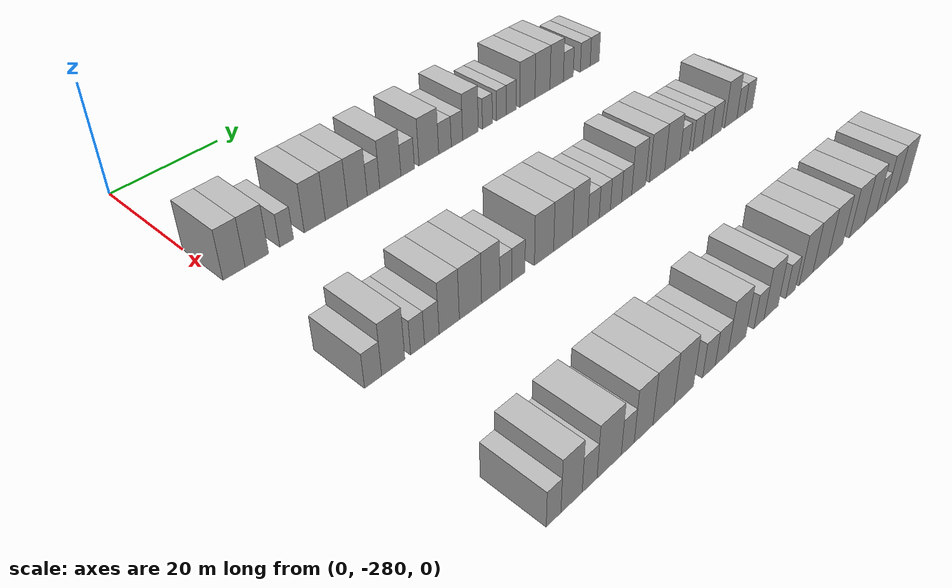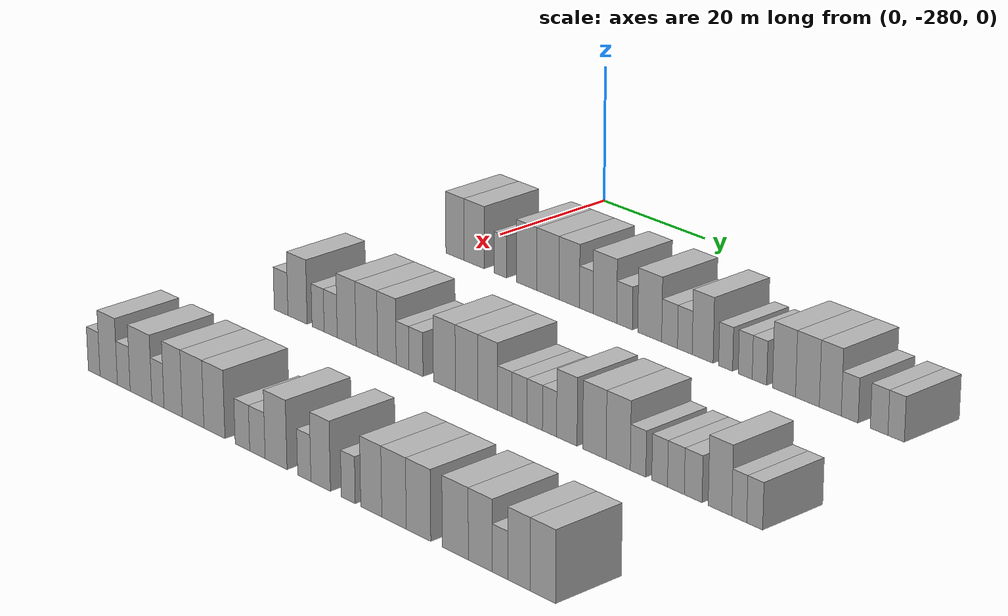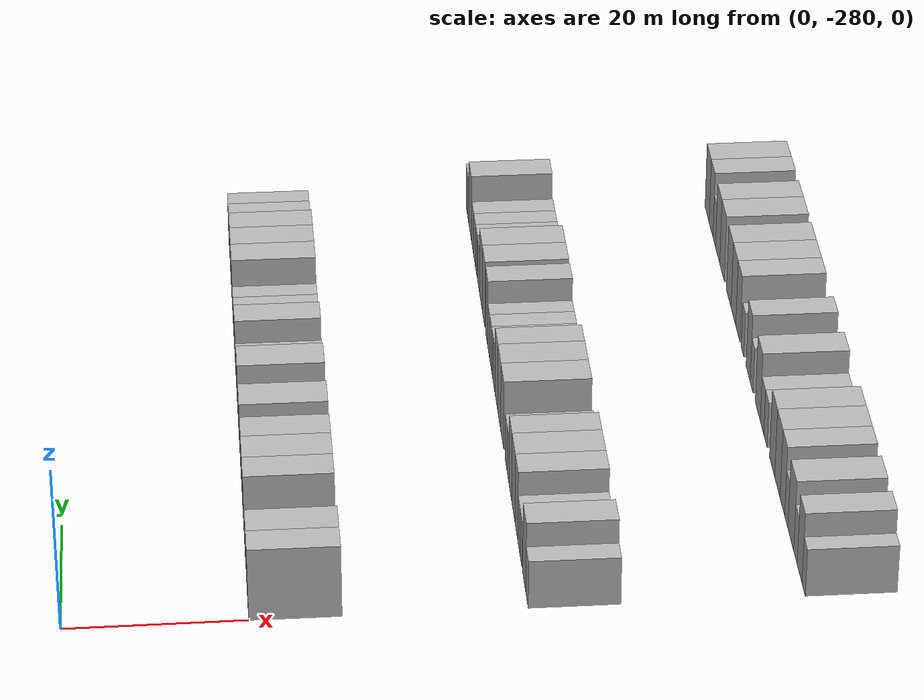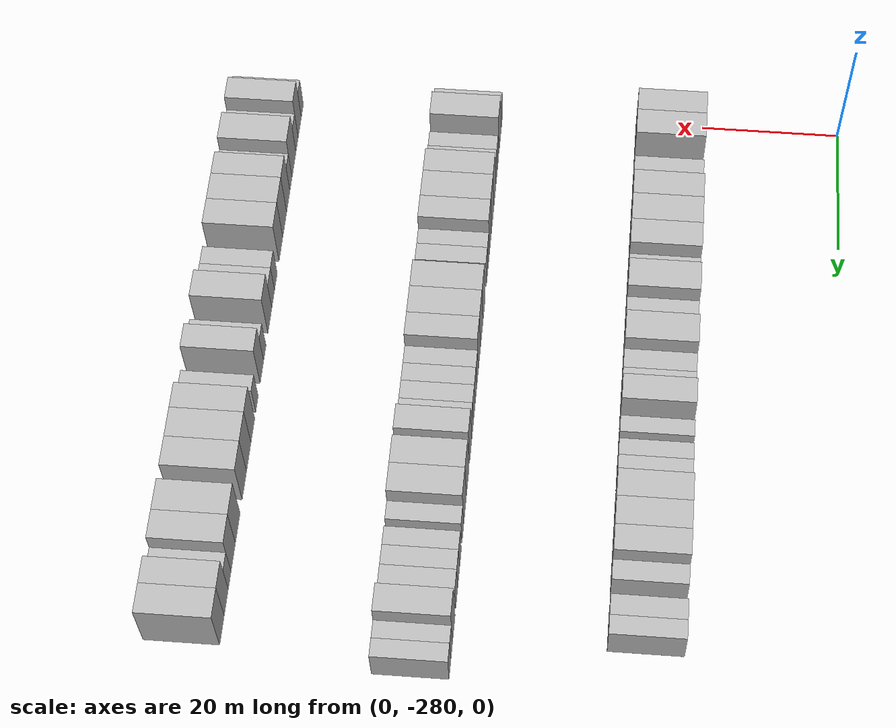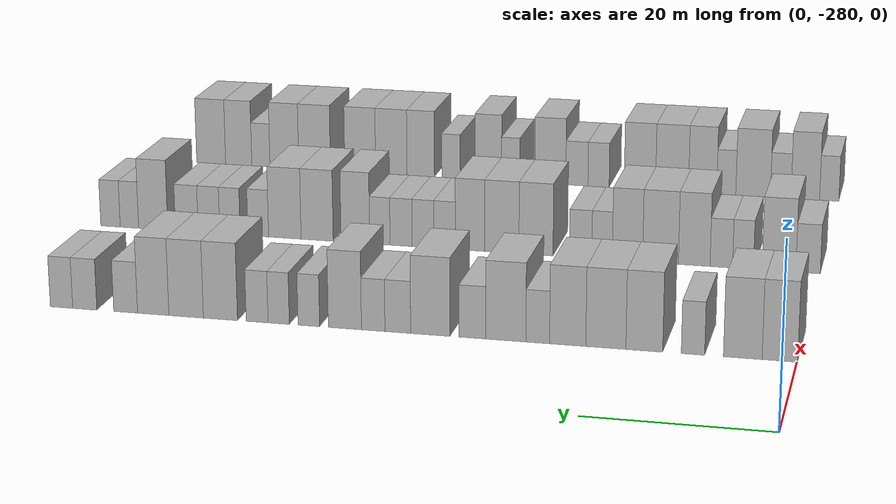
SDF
<sdf version="1.6">
 <world name="default">
  <model name="building_1">
   <static>1</static>
   <pose>25.0000 -278.1227 0 0.000000 0.000000 0.000000</pose>
   <link name="link">
    <pose>0 0 4.50 0 0 0</pose>
    <collision name="collision"><geometry><box><size>10.0000 3.7547 9.0000</size></box></geometry></collision>
    <visual name="visual">
     <cast_shadows>0</cast_shadows>
     <geometry><box><size>10.0000 3.7547 9.0000</size></box></geometry>
     <material>
      <script>
       <uri>model://HANNAS_wall/materials/scripts</uri>
       <uri>model://HANNAS_wall/materials/textures</uri>
       <name>vrc/HANNAS_wall</name>
      </script>
     </material>
    </visual>
   </link>
  </model>
  <model name="building_2">
   <static>1</static>
   <pose>25.0000 -274.1871 0 0.000000 0.000000 0.000000</pose>
   <link name="link">
    <pose>0 0 4.50 0 0 0</pose>
    <collision name="collision"><geometry><box><size>10.0000 4.1164 9.0000</size></box></geometry></collision>
    <visual name="visual">
     <cast_shadows>0</cast_shadows>
     <geometry><box><size>10.0000 4.1164 9.0000</size></box></geometry>
     <material>
      <script>
       <uri>model://HANNAS_wall/materials/scripts</uri>
       <uri>model://HANNAS_wall/materials/textures</uri>
       <name>vrc/HANNAS_wall</name>
      </script>
     </material>
    </visual>
   </link>
  </model>
  <model name="building_3">
   <static>1</static>
   <pose>25.0000 -268.8763 0 0.000000 0.000000 0.000000</pose>
   <link name="link">
    <pose>0 0 3.00 0 0 0</pose>
    <collision name="collision"><geometry><box><size>10.0000 2.5053 6.0000</size></box></geometry></collision>
    <visual name="visual">
     <cast_shadows>0</cast_shadows>
     <geometry><box><size>10.0000 2.5053 6.0000</size></box></geometry>
     <material>
      <script>
       <uri>model://HANNAS_wall/materials/scripts</uri>
       <uri>model://HANNAS_wall/materials/textures</uri>
       <name>vrc/HANNAS_wall</name>
      </script>
     </material>
    </visual>
   </link>
  </model>
  <model name="building_4">
   <static>1</static>
   <pose>25.0000 -263.6313 0 0.000000 0.000000 0.000000</pose>
   <link name="link">
    <pose>0 0 4.50 0 0 0</pose>
    <collision name="collision"><geometry><box><size>10.0000 3.9847 9.0000</size></box></geometry></collision>
    <visual name="visual">
     <cast_shadows>0</cast_shadows>
     <geometry><box><size>10.0000 3.9847 9.0000</size></box></geometry>
     <material>
      <script>
       <uri>model://HANNAS_wall/materials/scripts</uri>
       <uri>model://HANNAS_wall/materials/textures</uri>
       <name>vrc/HANNAS_wall</name>
      </script>
     </material>
    </visual>
   </link>
  </model>
  <model name="building_5">
   <static>1</static>
   <pose>25.0000 -259.4619 0 0.000000 0.000000 0.000000</pose>
   <link name="link">
    <pose>0 0 4.50 0 0 0</pose>
    <collision name="collision"><geometry><box><size>10.0000 4.3540 9.0000</size></box></geometry></collision>
    <visual name="visual">
     <cast_shadows>0</cast_shadows>
     <geometry><box><size>10.0000 4.3540 9.0000</size></box></geometry>
     <material>
      <script>
       <uri>model://HANNAS_wall/materials/scripts</uri>
       <uri>model://HANNAS_wall/materials/textures</uri>
       <name>vrc/HANNAS_wall</name>
      </script>
     </material>
    </visual>
   </link>
  </model>
  <model name="building_6">
   <static>1</static>
   <pose>25.0000 -255.3037 0 0.000000 0.000000 0.000000</pose>
   <link name="link">
    <pose>0 0 4.50 0 0 0</pose>
    <collision name="collision"><geometry><box><size>10.0000 3.9626 9.0000</size></box></geometry></collision>
    <visual name="visual">
     <cast_shadows>0</cast_shadows>
     <geometry><box><size>10.0000 3.9626 9.0000</size></box></geometry>
     <material>
      <script>
       <uri>model://HANNAS_wall/materials/scripts</uri>
       <uri>model://HANNAS_wall/materials/textures</uri>
       <name>vrc/HANNAS_wall</name>
      </script>
     </material>
    </visual>
   </link>
  </model>
  <model name="building_7">
   <static>1</static>
   <pose>25.0000 -252.0210 0 0.000000 0.000000 0.000000</pose>
   <link name="link">
    <pose>0 0 3.00 0 0 0</pose>
    <collision name="collision"><geometry><box><size>10.0000 2.6028 6.0000</size></box></geometry></collision>
    <visual name="visual">
     <cast_shadows>0</cast_shadows>
     <geometry><box><size>10.0000 2.6028 6.0000</size></box></geometry>
     <material>
      <script>
       <uri>model://HANNAS_wall/materials/scripts</uri>
       <uri>model://HANNAS_wall/materials/textures</uri>
       <name>vrc/HANNAS_wall</name>
      </script>
     </material>
    </visual>
   </link>
  </model>
  <model name="building_8">
   <static>1</static>
   <pose>25.0000 -248.4838 0 0.000000 0.000000 0.000000</pose>
   <link name="link">
    <pose>0 0 4.50 0 0 0</pose>
    <collision name="collision"><geometry><box><size>10.0000 4.4715 9.0000</size></box></geometry></collision>
    <visual name="visual">
     <cast_shadows>0</cast_shadows>
     <geometry><box><size>10.0000 4.4715 9.0000</size></box></geometry>
     <material>
      <script>
       <uri>model://HANNAS_wall/materials/scripts</uri>
       <uri>model://HANNAS_wall/materials/textures</uri>
       <name>vrc/HANNAS_wall</name>
      </script>
     </material>
    </visual>
   </link>
  </model>
  <model name="building_9">
   <static>1</static>
   <pose>25.0000 -244.7733 0 0.000000 0.000000 0.000000</pose>
   <link name="link">
    <pose>0 0 3.00 0 0 0</pose>
    <collision name="collision"><geometry><box><size>10.0000 2.9496 6.0000</size></box></geometry></collision>
    <visual name="visual">
     <cast_shadows>0</cast_shadows>
     <geometry><box><size>10.0000 2.9496 6.0000</size></box></geometry>
     <material>
      <script>
       <uri>model://HANNAS_wall/materials/scripts</uri>
       <uri>model://HANNAS_wall/materials/textures</uri>
       <name>vrc/HANNAS_wall</name>
      </script>
     </material>
    </visual>
   </link>
  </model>
  <model name="building_10">
   <static>1</static>
   <pose>25.0000 -240.0925 0 0.000000 0.000000 0.000000</pose>
   <link name="link">
    <pose>0 0 4.50 0 0 0</pose>
    <collision name="collision"><geometry><box><size>10.0000 4.4120 9.0000</size></box></geometry></collision>
    <visual name="visual">
     <cast_shadows>0</cast_shadows>
     <geometry><box><size>10.0000 4.4120 9.0000</size></box></geometry>
     <material>
      <script>
       <uri>model://HANNAS_wall/materials/scripts</uri>
       <uri>model://HANNAS_wall/materials/textures</uri>
       <name>vrc/HANNAS_wall</name>
      </script>
     </material>
    </visual>
   </link>
  </model>
  <model name="building_11">
   <static>1</static>
   <pose>25.0000 -236.4337 0 0.000000 0.000000 0.000000</pose>
   <link name="link">
    <pose>0 0 3.00 0 0 0</pose>
    <collision name="collision"><geometry><box><size>10.0000 2.9054 6.0000</size></box></geometry></collision>
    <visual name="visual">
     <cast_shadows>0</cast_shadows>
     <geometry><box><size>10.0000 2.9054 6.0000</size></box></geometry>
     <material>
      <script>
       <uri>model://HANNAS_wall/materials/scripts</uri>
       <uri>model://HANNAS_wall/materials/textures</uri>
       <name>vrc/HANNAS_wall</name>
      </script>
     </material>
    </visual>
   </link>
  </model>
  <model name="building_12">
   <static>1</static>
   <pose>25.0000 -233.6554 0 0.000000 0.000000 0.000000</pose>
   <link name="link">
    <pose>0 0 3.00 0 0 0</pose>
    <collision name="collision"><geometry><box><size>10.0000 2.6513 6.0000</size></box></geometry></collision>
    <visual name="visual">
     <cast_shadows>0</cast_shadows>
     <geometry><box><size>10.0000 2.6513 6.0000</size></box></geometry>
     <material>
      <script>
       <uri>model://HANNAS_wall/materials/scripts</uri>
       <uri>model://HANNAS_wall/materials/textures</uri>
       <name>vrc/HANNAS_wall</name>
      </script>
     </material>
    </visual>
   </link>
  </model>
  <model name="building_13">
   <static>1</static>
   <pose>25.0000 -230.4488 0 0.000000 0.000000 0.000000</pose>
   <link name="link">
    <pose>0 0 4.50 0 0 0</pose>
    <collision name="collision"><geometry><box><size>10.0000 3.7620 9.0000</size></box></geometry></collision>
    <visual name="visual">
     <cast_shadows>0</cast_shadows>
     <geometry><box><size>10.0000 3.7620 9.0000</size></box></geometry>
     <material>
      <script>
       <uri>model://HANNAS_wall/materials/scripts</uri>
       <uri>model://HANNAS_wall/materials/textures</uri>
       <name>vrc/HANNAS_wall</name>
      </script>
     </material>
    </visual>
   </link>
  </model>
  <model name="building_14">
   <static>1</static>
   <pose>25.0000 -226.3352 0 0.000000 0.000000 0.000000</pose>
   <link name="link">
    <pose>0 0 3.00 0 0 0</pose>
    <collision name="collision"><geometry><box><size>10.0000 2.4652 6.0000</size></box></geometry></collision>
    <visual name="visual">
     <cast_shadows>0</cast_shadows>
     <geometry><box><size>10.0000 2.4652 6.0000</size></box></geometry>
     <material>
      <script>
       <uri>model://HANNAS_wall/materials/scripts</uri>
       <uri>model://HANNAS_wall/materials/textures</uri>
       <name>vrc/HANNAS_wall</name>
      </script>
     </material>
    </visual>
   </link>
  </model>
  <model name="building_15">
   <static>1</static>
   <pose>25.0000 -222.8802 0 0.000000 0.000000 0.000000</pose>
   <link name="link">
    <pose>0 0 3.00 0 0 0</pose>
    <collision name="collision"><geometry><box><size>10.0000 2.4448 6.0000</size></box></geometry></collision>
    <visual name="visual">
     <cast_shadows>0</cast_shadows>
     <geometry><box><size>10.0000 2.4448 6.0000</size></box></geometry>
     <material>
      <script>
       <uri>model://HANNAS_wall/materials/scripts</uri>
       <uri>model://HANNAS_wall/materials/textures</uri>
       <name>vrc/HANNAS_wall</name>
      </script>
     </material>
    </visual>
   </link>
  </model>
  <model name="building_16">
   <static>1</static>
   <pose>25.0000 -220.3927 0 0.000000 0.000000 0.000000</pose>
   <link name="link">
    <pose>0 0 3.00 0 0 0</pose>
    <collision name="collision"><geometry><box><size>10.0000 2.5301 6.0000</size></box></geometry></collision>
    <visual name="visual">
     <cast_shadows>0</cast_shadows>
     <geometry><box><size>10.0000 2.5301 6.0000</size></box></geometry>
     <material>
      <script>
       <uri>model://HANNAS_wall/materials/scripts</uri>
       <uri>model://HANNAS_wall/materials/textures</uri>
       <name>vrc/HANNAS_wall</name>
      </script>
     </material>
    </visual>
   </link>
  </model>
  <model name="building_17">
   <static>1</static>
   <pose>25.0000 -216.1466 0 0.000000 0.000000 0.000000</pose>
   <link name="link">
    <pose>0 0 4.50 0 0 0</pose>
    <collision name="collision"><geometry><box><size>10.0000 3.9622 9.0000</size></box></geometry></collision>
    <visual name="visual">
     <cast_shadows>0</cast_shadows>
     <geometry><box><size>10.0000 3.9622 9.0000</size></box></geometry>
     <material>
      <script>
       <uri>model://HANNAS_wall/materials/scripts</uri>
       <uri>model://HANNAS_wall/materials/textures</uri>
       <name>vrc/HANNAS_wall</name>
      </script>
     </material>
    </visual>
   </link>
  </model>
  <model name="building_18">
   <static>1</static>
   <pose>25.0000 -212.1476 0 0.000000 0.000000 0.000000</pose>
   <link name="link">
    <pose>0 0 4.50 0 0 0</pose>
    <collision name="collision"><geometry><box><size>10.0000 4.0357 9.0000</size></box></geometry></collision>
    <visual name="visual">
     <cast_shadows>0</cast_shadows>
     <geometry><box><size>10.0000 4.0357 9.0000</size></box></geometry>
     <material>
      <script>
       <uri>model://HANNAS_wall/materials/scripts</uri>
       <uri>model://HANNAS_wall/materials/textures</uri>
       <name>vrc/HANNAS_wall</name>
      </script>
     </material>
    </visual>
   </link>
  </model>
  <model name="building_19">
   <static>1</static>
   <pose>25.0000 -208.2879 0 0.000000 0.000000 0.000000</pose>
   <link name="link">
    <pose>0 0 4.50 0 0 0</pose>
    <collision name="collision"><geometry><box><size>10.0000 3.6838 9.0000</size></box></geometry></collision>
    <visual name="visual">
     <cast_shadows>0</cast_shadows>
     <geometry><box><size>10.0000 3.6838 9.0000</size></box></geometry>
     <material>
      <script>
       <uri>model://HANNAS_wall/materials/scripts</uri>
       <uri>model://HANNAS_wall/materials/textures</uri>
       <name>vrc/HANNAS_wall</name>
      </script>
     </material>
    </visual>
   </link>
  </model>
  <model name="building_20">
   <static>1</static>
   <pose>25.0000 -205.0399 0 0.000000 0.000000 0.000000</pose>
   <link name="link">
    <pose>0 0 3.00 0 0 0</pose>
    <collision name="collision"><geometry><box><size>10.0000 2.8122 6.0000</size></box></geometry></collision>
    <visual name="visual">
     <cast_shadows>0</cast_shadows>
     <geometry><box><size>10.0000 2.8122 6.0000</size></box></geometry>
     <material>
      <script>
       <uri>model://HANNAS_wall/materials/scripts</uri>
       <uri>model://HANNAS_wall/materials/textures</uri>
       <name>vrc/HANNAS_wall</name>
      </script>
     </material>
    </visual>
   </link>
  </model>
  <model name="building_21">
   <static>1</static>
   <pose>25.0000 -200.1960 0 0.000000 0.000000 0.000000</pose>
   <link name="link">
    <pose>0 0 3.00 0 0 0</pose>
    <collision name="collision"><geometry><box><size>10.0000 2.8756 6.0000</size></box></geometry></collision>
    <visual name="visual">
     <cast_shadows>0</cast_shadows>
     <geometry><box><size>10.0000 2.8756 6.0000</size></box></geometry>
     <material>
      <script>
       <uri>model://HANNAS_wall/materials/scripts</uri>
       <uri>model://HANNAS_wall/materials/textures</uri>
       <name>vrc/HANNAS_wall</name>
      </script>
     </material>
    </visual>
   </link>
  </model>
  <model name="building_22">
   <static>1</static>
   <pose>25.0000 -197.4250 0 0.000000 0.000000 0.000000</pose>
   <link name="link">
    <pose>0 0 3.00 0 0 0</pose>
    <collision name="collision"><geometry><box><size>10.0000 2.6663 6.0000</size></box></geometry></collision>
    <visual name="visual">
     <cast_shadows>0</cast_shadows>
     <geometry><box><size>10.0000 2.6663 6.0000</size></box></geometry>
     <material>
      <script>
       <uri>model://HANNAS_wall/materials/scripts</uri>
       <uri>model://HANNAS_wall/materials/textures</uri>
       <name>vrc/HANNAS_wall</name>
      </script>
     </material>
    </visual>
   </link>
  </model>
  <model name="building_142">
   <static>1</static>
   <pose>55.0000 -278.5693 0 0.000000 0.000000 0.000000</pose>
   <link name="link">
    <pose>0 0 3.00 0 0 0</pose>
    <collision name="collision"><geometry><box><size>10.0000 2.8613 6.0000</size></box></geometry></collision>
    <visual name="visual">
     <cast_shadows>0</cast_shadows>
     <geometry><box><size>10.0000 2.8613 6.0000</size></box></geometry>
     <material>
      <script>
       <uri>model://HANNAS_wall/materials/scripts</uri>
       <uri>model://HANNAS_wall/materials/textures</uri>
       <name>vrc/HANNAS_wall</name>
      </script>
     </material>
    </visual>
   </link>
  </model>
  <model name="building_143">
   <static>1</static>
   <pose>55.0000 -275.1519 0 0.000000 0.000000 0.000000</pose>
   <link name="link">
    <pose>0 0 4.50 0 0 0</pose>
    <collision name="collision"><geometry><box><size>10.0000 3.9736 9.0000</size></box></geometry></collision>
    <visual name="visual">
     <cast_shadows>0</cast_shadows>
     <geometry><box><size>10.0000 3.9736 9.0000</size></box></geometry>
     <material>
      <script>
       <uri>model://HANNAS_wall/materials/scripts</uri>
       <uri>model://HANNAS_wall/materials/textures</uri>
       <name>vrc/HANNAS_wall</name>
      </script>
     </material>
    </visual>
   </link>
  </model>
  <model name="building_144">
   <static>1</static>
   <pose>55.0000 -270.9257 0 0.000000 0.000000 0.000000</pose>
   <link name="link">
    <pose>0 0 3.00 0 0 0</pose>
    <collision name="collision"><geometry><box><size>10.0000 2.4787 6.0000</size></box></geometry></collision>
    <visual name="visual">
     <cast_shadows>0</cast_shadows>
     <geometry><box><size>10.0000 2.4787 6.0000</size></box></geometry>
     <material>
      <script>
       <uri>model://HANNAS_wall/materials/scripts</uri>
       <uri>model://HANNAS_wall/materials/textures</uri>
       <name>vrc/HANNAS_wall</name>
      </script>
     </material>
    </visual>
   </link>
  </model>
  <model name="building_145">
   <static>1</static>
   <pose>55.0000 -268.3574 0 0.000000 0.000000 0.000000</pose>
   <link name="link">
    <pose>0 0 3.00 0 0 0</pose>
    <collision name="collision"><geometry><box><size>10.0000 2.6579 6.0000</size></box></geometry></collision>
    <visual name="visual">
     <cast_shadows>0</cast_shadows>
     <geometry><box><size>10.0000 2.6579 6.0000</size></box></geometry>
     <material>
      <script>
       <uri>model://HANNAS_wall/materials/scripts</uri>
       <uri>model://HANNAS_wall/materials/textures</uri>
       <name>vrc/HANNAS_wall</name>
      </script>
     </material>
    </visual>
   </link>
  </model>
  <model name="building_146">
   <static>1</static>
   <pose>55.0000 -265.1416 0 0.000000 0.000000 0.000000</pose>
   <link name="link">
    <pose>0 0 4.50 0 0 0</pose>
    <collision name="collision"><geometry><box><size>10.0000 3.7738 9.0000</size></box></geometry></collision>
    <visual name="visual">
     <cast_shadows>0</cast_shadows>
     <geometry><box><size>10.0000 3.7738 9.0000</size></box></geometry>
     <material>
      <script>
       <uri>model://HANNAS_wall/materials/scripts</uri>
       <uri>model://HANNAS_wall/materials/textures</uri>
       <name>vrc/HANNAS_wall</name>
      </script>
     </material>
    </visual>
   </link>
  </model>
  <model name="building_147">
   <static>1</static>
   <pose>55.0000 -261.1080 0 0.000000 0.000000 0.000000</pose>
   <link name="link">
    <pose>0 0 4.50 0 0 0</pose>
    <collision name="collision"><geometry><box><size>10.0000 4.2933 9.0000</size></box></geometry></collision>
    <visual name="visual">
     <cast_shadows>0</cast_shadows>
     <geometry><box><size>10.0000 4.2933 9.0000</size></box></geometry>
     <material>
      <script>
       <uri>model://HANNAS_wall/materials/scripts</uri>
       <uri>model://HANNAS_wall/materials/textures</uri>
       <name>vrc/HANNAS_wall</name>
      </script>
     </material>
    </visual>
   </link>
  </model>
  <model name="building_148">
   <static>1</static>
   <pose>55.0000 -257.1397 0 0.000000 0.000000 0.000000</pose>
   <link name="link">
    <pose>0 0 4.50 0 0 0</pose>
    <collision name="collision"><geometry><box><size>10.0000 3.6433 9.0000</size></box></geometry></collision>
    <visual name="visual">
     <cast_shadows>0</cast_shadows>
     <geometry><box><size>10.0000 3.6433 9.0000</size></box></geometry>
     <material>
      <script>
       <uri>model://HANNAS_wall/materials/scripts</uri>
       <uri>model://HANNAS_wall/materials/textures</uri>
       <name>vrc/HANNAS_wall</name>
      </script>
     </material>
    </visual>
   </link>
  </model>
  <model name="building_149">
   <static>1</static>
   <pose>55.0000 -254.0780 0 0.000000 0.000000 0.000000</pose>
   <link name="link">
    <pose>0 0 3.00 0 0 0</pose>
    <collision name="collision"><geometry><box><size>10.0000 2.4801 6.0000</size></box></geometry></collision>
    <visual name="visual">
     <cast_shadows>0</cast_shadows>
     <geometry><box><size>10.0000 2.4801 6.0000</size></box></geometry>
     <material>
      <script>
       <uri>model://HANNAS_wall/materials/scripts</uri>
       <uri>model://HANNAS_wall/materials/textures</uri>
       <name>vrc/HANNAS_wall</name>
      </script>
     </material>
    </visual>
   </link>
  </model>
  <model name="building_150">
   <static>1</static>
   <pose>55.0000 -251.4799 0 0.000000 0.000000 0.000000</pose>
   <link name="link">
    <pose>0 0 3.00 0 0 0</pose>
    <collision name="collision"><geometry><box><size>10.0000 2.7161 6.0000</size></box></geometry></collision>
    <visual name="visual">
     <cast_shadows>0</cast_shadows>
     <geometry><box><size>10.0000 2.7161 6.0000</size></box></geometry>
     <material>
      <script>
       <uri>model://HANNAS_wall/materials/scripts</uri>
       <uri>model://HANNAS_wall/materials/textures</uri>
       <name>vrc/HANNAS_wall</name>
      </script>
     </material>
    </visual>
   </link>
  </model>
  <model name="building_151">
   <static>1</static>
   <pose>55.0000 -246.0364 0 0.000000 0.000000 0.000000</pose>
   <link name="link">
    <pose>0 0 4.50 0 0 0</pose>
    <collision name="collision"><geometry><box><size>10.0000 4.1710 9.0000</size></box></geometry></collision>
    <visual name="visual">
     <cast_shadows>0</cast_shadows>
     <geometry><box><size>10.0000 4.1710 9.0000</size></box></geometry>
     <material>
      <script>
       <uri>model://HANNAS_wall/materials/scripts</uri>
       <uri>model://HANNAS_wall/materials/textures</uri>
       <name>vrc/HANNAS_wall</name>
      </script>
     </material>
    </visual>
   </link>
  </model>
  <model name="building_152">
   <static>1</static>
   <pose>55.0000 -241.8417 0 0.000000 0.000000 0.000000</pose>
   <link name="link">
    <pose>0 0 4.50 0 0 0</pose>
    <collision name="collision"><geometry><box><size>10.0000 4.2183 9.0000</size></box></geometry></collision>
    <visual name="visual">
     <cast_shadows>0</cast_shadows>
     <geometry><box><size>10.0000 4.2183 9.0000</size></box></geometry>
     <material>
      <script>
       <uri>model://HANNAS_wall/materials/scripts</uri>
       <uri>model://HANNAS_wall/materials/textures</uri>
       <name>vrc/HANNAS_wall</name>
      </script>
     </material>
    </visual>
   </link>
  </model>
  <model name="building_153">
   <static>1</static>
   <pose>55.0000 -237.9249 0 0.000000 0.000000 0.000000</pose>
   <link name="link">
    <pose>0 0 4.50 0 0 0</pose>
    <collision name="collision"><geometry><box><size>10.0000 3.6152 9.0000</size></box></geometry></collision>
    <visual name="visual">
     <cast_shadows>0</cast_shadows>
     <geometry><box><size>10.0000 3.6152 9.0000</size></box></geometry>
     <material>
      <script>
       <uri>model://HANNAS_wall/materials/scripts</uri>
       <uri>model://HANNAS_wall/materials/textures</uri>
       <name>vrc/HANNAS_wall</name>
      </script>
     </material>
    </visual>
   </link>
  </model>
  <model name="building_154">
   <static>1</static>
   <pose>55.0000 -234.7809 0 0.000000 0.000000 0.000000</pose>
   <link name="link">
    <pose>0 0 3.00 0 0 0</pose>
    <collision name="collision"><geometry><box><size>10.0000 2.6728 6.0000</size></box></geometry></collision>
    <visual name="visual">
     <cast_shadows>0</cast_shadows>
     <geometry><box><size>10.0000 2.6728 6.0000</size></box></geometry>
     <material>
      <script>
       <uri>model://HANNAS_wall/materials/scripts</uri>
       <uri>model://HANNAS_wall/materials/textures</uri>
       <name>vrc/HANNAS_wall</name>
      </script>
     </material>
    </visual>
   </link>
  </model>
  <model name="building_155">
   <static>1</static>
   <pose>55.0000 -232.0857 0 0.000000 0.000000 0.000000</pose>
   <link name="link">
    <pose>0 0 3.00 0 0 0</pose>
    <collision name="collision"><geometry><box><size>10.0000 2.7177 6.0000</size></box></geometry></collision>
    <visual name="visual">
     <cast_shadows>0</cast_shadows>
     <geometry><box><size>10.0000 2.7177 6.0000</size></box></geometry>
     <material>
      <script>
       <uri>model://HANNAS_wall/materials/scripts</uri>
       <uri>model://HANNAS_wall/materials/textures</uri>
       <name>vrc/HANNAS_wall</name>
      </script>
     </material>
    </visual>
   </link>
  </model>
  <model name="building_156">
   <static>1</static>
   <pose>55.0000 -229.3465 0 0.000000 0.000000 0.000000</pose>
   <link name="link">
    <pose>0 0 3.00 0 0 0</pose>
    <collision name="collision"><geometry><box><size>10.0000 2.7606 6.0000</size></box></geometry></collision>
    <visual name="visual">
     <cast_shadows>0</cast_shadows>
     <geometry><box><size>10.0000 2.7606 6.0000</size></box></geometry>
     <material>
      <script>
       <uri>model://HANNAS_wall/materials/scripts</uri>
       <uri>model://HANNAS_wall/materials/textures</uri>
       <name>vrc/HANNAS_wall</name>
      </script>
     </material>
    </visual>
   </link>
  </model>
  <model name="building_157">
   <static>1</static>
   <pose>55.0000 -226.6912 0 0.000000 0.000000 0.000000</pose>
   <link name="link">
    <pose>0 0 3.00 0 0 0</pose>
    <collision name="collision"><geometry><box><size>10.0000 2.5500 6.0000</size></box></geometry></collision>
    <visual name="visual">
     <cast_shadows>0</cast_shadows>
     <geometry><box><size>10.0000 2.5500 6.0000</size></box></geometry>
     <material>
      <script>
       <uri>model://HANNAS_wall/materials/scripts</uri>
       <uri>model://HANNAS_wall/materials/textures</uri>
       <name>vrc/HANNAS_wall</name>
      </script>
     </material>
    </visual>
   </link>
  </model>
  <model name="building_158">
   <static>1</static>
   <pose>55.0000 -223.6130 0 0.000000 0.000000 0.000000</pose>
   <link name="link">
    <pose>0 0 4.50 0 0 0</pose>
    <collision name="collision"><geometry><box><size>10.0000 3.6064 9.0000</size></box></geometry></collision>
    <visual name="visual">
     <cast_shadows>0</cast_shadows>
     <geometry><box><size>10.0000 3.6064 9.0000</size></box></geometry>
     <material>
      <script>
       <uri>model://HANNAS_wall/materials/scripts</uri>
       <uri>model://HANNAS_wall/materials/textures</uri>
       <name>vrc/HANNAS_wall</name>
      </script>
     </material>
    </visual>
   </link>
  </model>
  <model name="building_159">
   <static>1</static>
   <pose>55.0000 -218.7681 0 0.000000 0.000000 0.000000</pose>
   <link name="link">
    <pose>0 0 4.50 0 0 0</pose>
    <collision name="collision"><geometry><box><size>10.0000 4.0835 9.0000</size></box></geometry></collision>
    <visual name="visual">
     <cast_shadows>0</cast_shadows>
     <geometry><box><size>10.0000 4.0835 9.0000</size></box></geometry>
     <material>
      <script>
       <uri>model://HANNAS_wall/materials/scripts</uri>
       <uri>model://HANNAS_wall/materials/textures</uri>
       <name>vrc/HANNAS_wall</name>
      </script>
     </material>
    </visual>
   </link>
  </model>
  <model name="building_160">
   <static>1</static>
   <pose>55.0000 -214.6540 0 0.000000 0.000000 0.000000</pose>
   <link name="link">
    <pose>0 0 4.50 0 0 0</pose>
    <collision name="collision"><geometry><box><size>10.0000 4.1447 9.0000</size></box></geometry></collision>
    <visual name="visual">
     <cast_shadows>0</cast_shadows>
     <geometry><box><size>10.0000 4.1447 9.0000</size></box></geometry>
     <material>
      <script>
       <uri>model://HANNAS_wall/materials/scripts</uri>
       <uri>model://HANNAS_wall/materials/textures</uri>
       <name>vrc/HANNAS_wall</name>
      </script>
     </material>
    </visual>
   </link>
  </model>
  <model name="building_161">
   <static>1</static>
   <pose>55.0000 -211.2591 0 0.000000 0.000000 0.000000</pose>
   <link name="link">
    <pose>0 0 3.00 0 0 0</pose>
    <collision name="collision"><geometry><box><size>10.0000 2.6452 6.0000</size></box></geometry></collision>
    <visual name="visual">
     <cast_shadows>0</cast_shadows>
     <geometry><box><size>10.0000 2.6452 6.0000</size></box></geometry>
     <material>
      <script>
       <uri>model://HANNAS_wall/materials/scripts</uri>
       <uri>model://HANNAS_wall/materials/textures</uri>
       <name>vrc/HANNAS_wall</name>
      </script>
     </material>
    </visual>
   </link>
  </model>
  <model name="building_162">
   <static>1</static>
   <pose>55.0000 -207.6179 0 0.000000 0.000000 0.000000</pose>
   <link name="link">
    <pose>0 0 3.00 0 0 0</pose>
    <collision name="collision"><geometry><box><size>10.0000 2.6372 6.0000</size></box></geometry></collision>
    <visual name="visual">
     <cast_shadows>0</cast_shadows>
     <geometry><box><size>10.0000 2.6372 6.0000</size></box></geometry>
     <material>
      <script>
       <uri>model://HANNAS_wall/materials/scripts</uri>
       <uri>model://HANNAS_wall/materials/textures</uri>
       <name>vrc/HANNAS_wall</name>
      </script>
     </material>
    </visual>
   </link>
  </model>
  <model name="building_163">
   <static>1</static>
   <pose>55.0000 -204.9050 0 0.000000 0.000000 0.000000</pose>
   <link name="link">
    <pose>0 0 3.00 0 0 0</pose>
    <collision name="collision"><geometry><box><size>10.0000 2.7885 6.0000</size></box></geometry></collision>
    <visual name="visual">
     <cast_shadows>0</cast_shadows>
     <geometry><box><size>10.0000 2.7885 6.0000</size></box></geometry>
     <material>
      <script>
       <uri>model://HANNAS_wall/materials/scripts</uri>
       <uri>model://HANNAS_wall/materials/textures</uri>
       <name>vrc/HANNAS_wall</name>
      </script>
     </material>
    </visual>
   </link>
  </model>
  <model name="building_164">
   <static>1</static>
   <pose>55.0000 -202.0379 0 0.000000 0.000000 0.000000</pose>
   <link name="link">
    <pose>0 0 3.00 0 0 0</pose>
    <collision name="collision"><geometry><box><size>10.0000 2.9457 6.0000</size></box></geometry></collision>
    <visual name="visual">
     <cast_shadows>0</cast_shadows>
     <geometry><box><size>10.0000 2.9457 6.0000</size></box></geometry>
     <material>
      <script>
       <uri>model://HANNAS_wall/materials/scripts</uri>
       <uri>model://HANNAS_wall/materials/textures</uri>
       <name>vrc/HANNAS_wall</name>
      </script>
     </material>
    </visual>
   </link>
  </model>
  <model name="building_165">
   <static>1</static>
   <pose>55.0000 -197.6565 0 0.000000 0.000000 0.000000</pose>
   <link name="link">
    <pose>0 0 4.50 0 0 0</pose>
    <collision name="collision"><geometry><box><size>10.0000 3.8169 9.0000</size></box></geometry></collision>
    <visual name="visual">
     <cast_shadows>0</cast_shadows>
     <geometry><box><size>10.0000 3.8169 9.0000</size></box></geometry>
     <material>
      <script>
       <uri>model://HANNAS_wall/materials/scripts</uri>
       <uri>model://HANNAS_wall/materials/textures</uri>
       <name>vrc/HANNAS_wall</name>
      </script>
     </material>
    </visual>
   </link>
  </model>
  <model name="building_166">
   <static>1</static>
   <pose>55.0000 -194.5419 0 0.000000 0.000000 0.000000</pose>
   <link name="link">
    <pose>0 0 3.00 0 0 0</pose>
    <collision name="collision"><geometry><box><size>10.0000 2.4123 6.0000</size></box></geometry></collision>
    <visual name="visual">
     <cast_shadows>0</cast_shadows>
     <geometry><box><size>10.0000 2.4123 6.0000</size></box></geometry>
     <material>
      <script>
       <uri>model://HANNAS_wall/materials/scripts</uri>
       <uri>model://HANNAS_wall/materials/textures</uri>
       <name>vrc/HANNAS_wall</name>
      </script>
     </material>
    </visual>
   </link>
  </model>
  <model name="building_167">
   <static>1</static>
   <pose>55.0000 -192.0597 0 0.000000 0.000000 0.000000</pose>
   <link name="link">
    <pose>0 0 3.00 0 0 0</pose>
    <collision name="collision"><geometry><box><size>10.0000 2.5522 6.0000</size></box></geometry></collision>
    <visual name="visual">
     <cast_shadows>0</cast_shadows>
     <geometry><box><size>10.0000 2.5522 6.0000</size></box></geometry>
     <material>
      <script>
       <uri>model://HANNAS_wall/materials/scripts</uri>
       <uri>model://HANNAS_wall/materials/textures</uri>
       <name>vrc/HANNAS_wall</name>
      </script>
     </material>
    </visual>
   </link>
  </model>
  <model name="building_285">
   <static>1</static>
   <pose>85.0000 -278.7629 0 0.000000 0.000000 0.000000</pose>
   <link name="link">
    <pose>0 0 3.00 0 0 0</pose>
    <collision name="collision"><geometry><box><size>10.0000 2.4741 6.0000</size></box></geometry></collision>
    <visual name="visual">
     <cast_shadows>0</cast_shadows>
     <geometry><box><size>10.0000 2.4741 6.0000</size></box></geometry>
     <material>
      <script>
       <uri>model://HANNAS_wall/materials/scripts</uri>
       <uri>model://HANNAS_wall/materials/textures</uri>
       <name>vrc/HANNAS_wall</name>
      </script>
     </material>
    </visual>
   </link>
  </model>
  <model name="building_286">
   <static>1</static>
   <pose>85.0000 -275.6850 0 0.000000 0.000000 0.000000</pose>
   <link name="link">
    <pose>0 0 4.50 0 0 0</pose>
    <collision name="collision"><geometry><box><size>10.0000 3.6818 9.0000</size></box></geometry></collision>
    <visual name="visual">
     <cast_shadows>0</cast_shadows>
     <geometry><box><size>10.0000 3.6818 9.0000</size></box></geometry>
     <material>
      <script>
       <uri>model://HANNAS_wall/materials/scripts</uri>
       <uri>model://HANNAS_wall/materials/textures</uri>
       <name>vrc/HANNAS_wall</name>
      </script>
     </material>
    </visual>
   </link>
  </model>
  <model name="building_287">
   <static>1</static>
   <pose>85.0000 -272.5146 0 0.000000 0.000000 0.000000</pose>
   <link name="link">
    <pose>0 0 3.00 0 0 0</pose>
    <collision name="collision"><geometry><box><size>10.0000 2.6589 6.0000</size></box></geometry></collision>
    <visual name="visual">
     <cast_shadows>0</cast_shadows>
     <geometry><box><size>10.0000 2.6589 6.0000</size></box></geometry>
     <material>
      <script>
       <uri>model://HANNAS_wall/materials/scripts</uri>
       <uri>model://HANNAS_wall/materials/textures</uri>
       <name>vrc/HANNAS_wall</name>
      </script>
     </material>
    </visual>
   </link>
  </model>
  <model name="building_288">
   <static>1</static>
   <pose>85.0000 -268.9405 0 0.000000 0.000000 0.000000</pose>
   <link name="link">
    <pose>0 0 4.50 0 0 0</pose>
    <collision name="collision"><geometry><box><size>10.0000 4.4892 9.0000</size></box></geometry></collision>
    <visual name="visual">
     <cast_shadows>0</cast_shadows>
     <geometry><box><size>10.0000 4.4892 9.0000</size></box></geometry>
     <material>
      <script>
       <uri>model://HANNAS_wall/materials/scripts</uri>
       <uri>model://HANNAS_wall/materials/textures</uri>
       <name>vrc/HANNAS_wall</name>
      </script>
     </material>
    </visual>
   </link>
  </model>
  <model name="building_289">
   <static>1</static>
   <pose>85.0000 -265.4523 0 0.000000 0.000000 0.000000</pose>
   <link name="link">
    <pose>0 0 3.00 0 0 0</pose>
    <collision name="collision"><geometry><box><size>10.0000 2.4873 6.0000</size></box></geometry></collision>
    <visual name="visual">
     <cast_shadows>0</cast_shadows>
     <geometry><box><size>10.0000 2.4873 6.0000</size></box></geometry>
     <material>
      <script>
       <uri>model://HANNAS_wall/materials/scripts</uri>
       <uri>model://HANNAS_wall/materials/textures</uri>
       <name>vrc/HANNAS_wall</name>
      </script>
     </material>
    </visual>
   </link>
  </model>
  <model name="building_290">
   <static>1</static>
   <pose>85.0000 -262.3610 0 0.000000 0.000000 0.000000</pose>
   <link name="link">
    <pose>0 0 4.50 0 0 0</pose>
    <collision name="collision"><geometry><box><size>10.0000 3.6953 9.0000</size></box></geometry></collision>
    <visual name="visual">
     <cast_shadows>0</cast_shadows>
     <geometry><box><size>10.0000 3.6953 9.0000</size></box></geometry>
     <material>
      <script>
       <uri>model://HANNAS_wall/materials/scripts</uri>
       <uri>model://HANNAS_wall/materials/textures</uri>
       <name>vrc/HANNAS_wall</name>
      </script>
     </material>
    </visual>
   </link>
  </model>
  <model name="building_291">
   <static>1</static>
   <pose>85.0000 -258.3479 0 0.000000 0.000000 0.000000</pose>
   <link name="link">
    <pose>0 0 4.50 0 0 0</pose>
    <collision name="collision"><geometry><box><size>10.0000 4.3309 9.0000</size></box></geometry></collision>
    <visual name="visual">
     <cast_shadows>0</cast_shadows>
     <geometry><box><size>10.0000 4.3309 9.0000</size></box></geometry>
     <material>
      <script>
       <uri>model://HANNAS_wall/materials/scripts</uri>
       <uri>model://HANNAS_wall/materials/textures</uri>
       <name>vrc/HANNAS_wall</name>
      </script>
     </material>
    </visual>
   </link>
  </model>
  <model name="building_292">
   <static>1</static>
   <pose>85.0000 -254.1120 0 0.000000 0.000000 0.000000</pose>
   <link name="link">
    <pose>0 0 4.50 0 0 0</pose>
    <collision name="collision"><geometry><box><size>10.0000 4.1409 9.0000</size></box></geometry></collision>
    <visual name="visual">
     <cast_shadows>0</cast_shadows>
     <geometry><box><size>10.0000 4.1409 9.0000</size></box></geometry>
     <material>
      <script>
       <uri>model://HANNAS_wall/materials/scripts</uri>
       <uri>model://HANNAS_wall/materials/textures</uri>
       <name>vrc/HANNAS_wall</name>
      </script>
     </material>
    </visual>
   </link>
  </model>
  <model name="building_293">
   <static>1</static>
   <pose>85.0000 -248.6303 0 0.000000 0.000000 0.000000</pose>
   <link name="link">
    <pose>0 0 3.00 0 0 0</pose>
    <collision name="collision"><geometry><box><size>10.0000 2.8225 6.0000</size></box></geometry></collision>
    <visual name="visual">
     <cast_shadows>0</cast_shadows>
     <geometry><box><size>10.0000 2.8225 6.0000</size></box></geometry>
     <material>
      <script>
       <uri>model://HANNAS_wall/materials/scripts</uri>
       <uri>model://HANNAS_wall/materials/textures</uri>
       <name>vrc/HANNAS_wall</name>
      </script>
     </material>
    </visual>
   </link>
  </model>
  <model name="building_294">
   <static>1</static>
   <pose>85.0000 -245.7360 0 0.000000 0.000000 0.000000</pose>
   <link name="link">
    <pose>0 0 3.00 0 0 0</pose>
    <collision name="collision"><geometry><box><size>10.0000 2.9661 6.0000</size></box></geometry></collision>
    <visual name="visual">
     <cast_shadows>0</cast_shadows>
     <geometry><box><size>10.0000 2.9661 6.0000</size></box></geometry>
     <material>
      <script>
       <uri>model://HANNAS_wall/materials/scripts</uri>
       <uri>model://HANNAS_wall/materials/textures</uri>
       <name>vrc/HANNAS_wall</name>
      </script>
     </material>
    </visual>
   </link>
  </model>
  <model name="building_295">
   <static>1</static>
   <pose>85.0000 -242.1734 0 0.000000 0.000000 0.000000</pose>
   <link name="link">
    <pose>0 0 4.50 0 0 0</pose>
    <collision name="collision"><geometry><box><size>10.0000 4.1592 9.0000</size></box></geometry></collision>
    <visual name="visual">
     <cast_shadows>0</cast_shadows>
     <geometry><box><size>10.0000 4.1592 9.0000</size></box></geometry>
     <material>
      <script>
       <uri>model://HANNAS_wall/materials/scripts</uri>
       <uri>model://HANNAS_wall/materials/textures</uri>
       <name>vrc/HANNAS_wall</name>
      </script>
     </material>
    </visual>
   </link>
  </model>
  <model name="building_296">
   <static>1</static>
   <pose>85.0000 -236.8566 0 0.000000 0.000000 0.000000</pose>
   <link name="link">
    <pose>0 0 3.00 0 0 0</pose>
    <collision name="collision"><geometry><box><size>10.0000 2.4744 6.0000</size></box></geometry></collision>
    <visual name="visual">
     <cast_shadows>0</cast_shadows>
     <geometry><box><size>10.0000 2.4744 6.0000</size></box></geometry>
     <material>
      <script>
       <uri>model://HANNAS_wall/materials/scripts</uri>
       <uri>model://HANNAS_wall/materials/textures</uri>
       <name>vrc/HANNAS_wall</name>
      </script>
     </material>
    </visual>
   </link>
  </model>
  <model name="building_297">
   <static>1</static>
   <pose>85.0000 -233.8147 0 0.000000 0.000000 0.000000</pose>
   <link name="link">
    <pose>0 0 4.50 0 0 0</pose>
    <collision name="collision"><geometry><box><size>10.0000 3.6094 9.0000</size></box></geometry></collision>
    <visual name="visual">
     <cast_shadows>0</cast_shadows>
     <geometry><box><size>10.0000 3.6094 9.0000</size></box></geometry>
     <material>
      <script>
       <uri>model://HANNAS_wall/materials/scripts</uri>
       <uri>model://HANNAS_wall/materials/textures</uri>
       <name>vrc/HANNAS_wall</name>
      </script>
     </material>
    </visual>
   </link>
  </model>
  <model name="building_298">
   <static>1</static>
   <pose>85.0000 -228.7499 0 0.000000 0.000000 0.000000</pose>
   <link name="link">
    <pose>0 0 3.00 0 0 0</pose>
    <collision name="collision"><geometry><box><size>10.0000 2.5202 6.0000</size></box></geometry></collision>
    <visual name="visual">
     <cast_shadows>0</cast_shadows>
     <geometry><box><size>10.0000 2.5202 6.0000</size></box></geometry>
     <material>
      <script>
       <uri>model://HANNAS_wall/materials/scripts</uri>
       <uri>model://HANNAS_wall/materials/textures</uri>
       <name>vrc/HANNAS_wall</name>
      </script>
     </material>
    </visual>
   </link>
  </model>
  <model name="building_299">
   <static>1</static>
   <pose>85.0000 -224.6057 0 0.000000 0.000000 0.000000</pose>
   <link name="link">
    <pose>0 0 4.50 0 0 0</pose>
    <collision name="collision"><geometry><box><size>10.0000 3.7682 9.0000</size></box></geometry></collision>
    <visual name="visual">
     <cast_shadows>0</cast_shadows>
     <geometry><box><size>10.0000 3.7682 9.0000</size></box></geometry>
     <material>
      <script>
       <uri>model://HANNAS_wall/materials/scripts</uri>
       <uri>model://HANNAS_wall/materials/textures</uri>
       <name>vrc/HANNAS_wall</name>
      </script>
     </material>
    </visual>
   </link>
  </model>
  <model name="building_300">
   <static>1</static>
   <pose>85.0000 -220.5534 0 0.000000 0.000000 0.000000</pose>
   <link name="link">
    <pose>0 0 4.50 0 0 0</pose>
    <collision name="collision"><geometry><box><size>10.0000 4.3365 9.0000</size></box></geometry></collision>
    <visual name="visual">
     <cast_shadows>0</cast_shadows>
     <geometry><box><size>10.0000 4.3365 9.0000</size></box></geometry>
     <material>
      <script>
       <uri>model://HANNAS_wall/materials/scripts</uri>
       <uri>model://HANNAS_wall/materials/textures</uri>
       <name>vrc/HANNAS_wall</name>
      </script>
     </material>
    </visual>
   </link>
  </model>
  <model name="building_301">
   <static>1</static>
   <pose>85.0000 -216.2488 0 0.000000 0.000000 0.000000</pose>
   <link name="link">
    <pose>0 0 4.50 0 0 0</pose>
    <collision name="collision"><geometry><box><size>10.0000 4.2727 9.0000</size></box></geometry></collision>
    <visual name="visual">
     <cast_shadows>0</cast_shadows>
     <geometry><box><size>10.0000 4.2727 9.0000</size></box></geometry>
     <material>
      <script>
       <uri>model://HANNAS_wall/materials/scripts</uri>
       <uri>model://HANNAS_wall/materials/textures</uri>
       <name>vrc/HANNAS_wall</name>
      </script>
     </material>
    </visual>
   </link>
  </model>
  <model name="building_302">
   <static>1</static>
   <pose>85.0000 -209.8936 0 0.000000 0.000000 0.000000</pose>
   <link name="link">
    <pose>0 0 4.50 0 0 0</pose>
    <collision name="collision"><geometry><box><size>10.0000 4.4375 9.0000</size></box></geometry></collision>
    <visual name="visual">
     <cast_shadows>0</cast_shadows>
     <geometry><box><size>10.0000 4.4375 9.0000</size></box></geometry>
     <material>
      <script>
       <uri>model://HANNAS_wall/materials/scripts</uri>
       <uri>model://HANNAS_wall/materials/textures</uri>
       <name>vrc/HANNAS_wall</name>
      </script>
     </material>
    </visual>
   </link>
  </model>
  <model name="building_303">
   <static>1</static>
   <pose>85.0000 -205.6592 0 0.000000 0.000000 0.000000</pose>
   <link name="link">
    <pose>0 0 4.50 0 0 0</pose>
    <collision name="collision"><geometry><box><size>10.0000 4.0314 9.0000</size></box></geometry></collision>
    <visual name="visual">
     <cast_shadows>0</cast_shadows>
     <geometry><box><size>10.0000 4.0314 9.0000</size></box></geometry>
     <material>
      <script>
       <uri>model://HANNAS_wall/materials/scripts</uri>
       <uri>model://HANNAS_wall/materials/textures</uri>
       <name>vrc/HANNAS_wall</name>
      </script>
     </material>
    </visual>
   </link>
  </model>
  <model name="building_304">
   <static>1</static>
   <pose>85.0000 -202.3577 0 0.000000 0.000000 0.000000</pose>
   <link name="link">
    <pose>0 0 3.00 0 0 0</pose>
    <collision name="collision"><geometry><box><size>10.0000 2.5717 6.0000</size></box></geometry></collision>
    <visual name="visual">
     <cast_shadows>0</cast_shadows>
     <geometry><box><size>10.0000 2.5717 6.0000</size></box></geometry>
     <material>
      <script>
       <uri>model://HANNAS_wall/materials/scripts</uri>
       <uri>model://HANNAS_wall/materials/textures</uri>
       <name>vrc/HANNAS_wall</name>
      </script>
     </material>
    </visual>
   </link>
  </model>
  <model name="building_305">
   <static>1</static>
   <pose>85.0000 -199.2214 0 0.000000 0.000000 0.000000</pose>
   <link name="link">
    <pose>0 0 4.50 0 0 0</pose>
    <collision name="collision"><geometry><box><size>10.0000 3.7008 9.0000</size></box></geometry></collision>
    <visual name="visual">
     <cast_shadows>0</cast_shadows>
     <geometry><box><size>10.0000 3.7008 9.0000</size></box></geometry>
     <material>
      <script>
       <uri>model://HANNAS_wall/materials/scripts</uri>
       <uri>model://HANNAS_wall/materials/textures</uri>
       <name>vrc/HANNAS_wall</name>
      </script>
     </material>
    </visual>
   </link>
  </model>
  <model name="building_306">
   <static>1</static>
   <pose>85.0000 -195.3191 0 0.000000 0.000000 0.000000</pose>
   <link name="link">
    <pose>0 0 4.50 0 0 0</pose>
    <collision name="collision"><geometry><box><size>10.0000 4.1039 9.0000</size></box></geometry></collision>
    <visual name="visual">
     <cast_shadows>0</cast_shadows>
     <geometry><box><size>10.0000 4.1039 9.0000</size></box></geometry>
     <material>
      <script>
       <uri>model://HANNAS_wall/materials/scripts</uri>
       <uri>model://HANNAS_wall/materials/textures</uri>
       <name>vrc/HANNAS_wall</name>
      </script>
     </material>
    </visual>
   </link>
  </model>
 </world>
</sdf>
